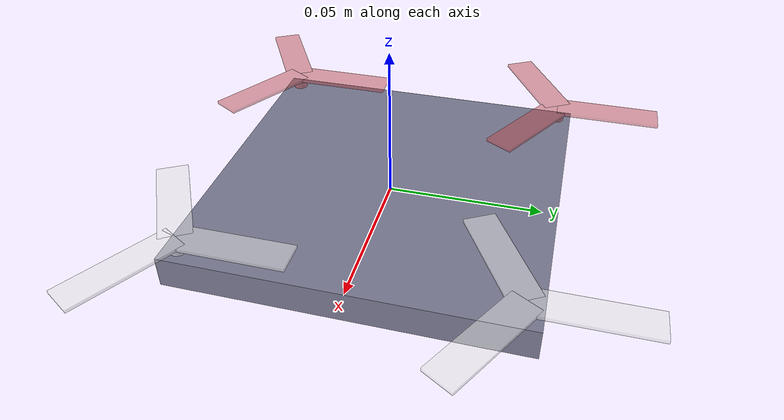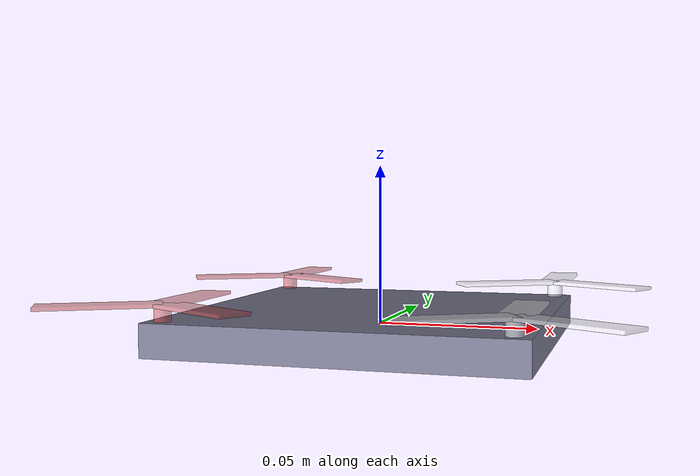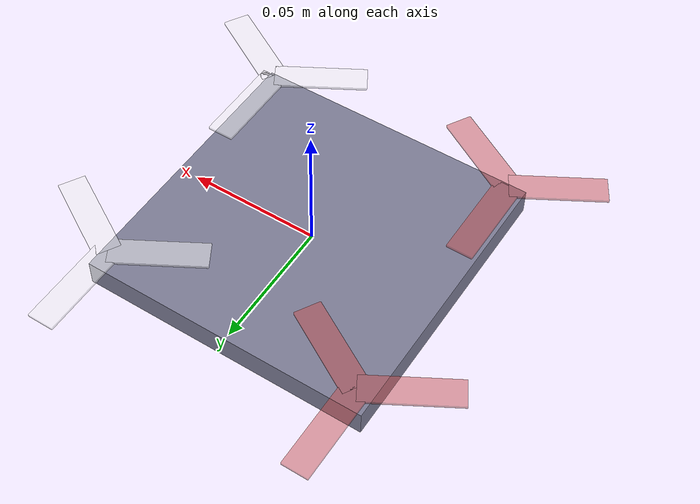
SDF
<?xml version="1.0"?>
<sdf version="1.5">
	<model name="iflight">
        <link name="body">
			<inertial>
                <pose>0 0 0 0 0 0</pose>
				<mass>0.392</mass>
				<inertia>
					<ixx>0.0003985</ixx>
                    <ixy>0.0</ixy>
                    <ixz>0.0</ixz>
					<iyy>0.0003985</iyy>
					<iyz>0.0</iyz>
                    <izz>0.0007905</izz>
				</inertia>
			</inertial>
			<collision name="collision">
				<geometry>
					<box>
						<size>0.11 0.11 0.01</size>
					</box>
				</geometry>
			</collision>
			<sensor name="imu_sensor" type="imu"> <!-- Перенести в отдельный link -->
			<pose degrees="true">0 0 0 0 0 90</pose>
				<always_on>1</always_on>
				<visualize>1</visualize>
				<update_rate>1000</update_rate>
				<topic>imu</topic>
			</sensor>
			<visual name="body_visual">
				<geometry>
					<box>
						<size>0.11 0.11 0.01</size>
					</box>
				</geometry>
				<material>
					<ambient>0.5 0.5 0.6 1</ambient>
					<diffuse>0.5 0.5 0.6 1</diffuse>
					<specular>0 0 0 1</specular>
					<emissive>0 0 0 1</emissive>
				</material>
			</visual>
		</link>

        <link name="rotor_0_base">
			<pose>-0.05 0.05 0.0075 0 0 0</pose>
			<inertial>
				<pose>0 0 0 0 0 0</pose>
				<inertia>
                    <ixx>1.393E-9</ixx>
                    <ixy>0.0</ixy>
                    <ixz>0.0</ixz>
                    <iyy>1.393E-9</iyy>
                    <iyz>0.0</iyz>
                    <izz>9.766E-10</izz>
                </inertia>
                <mass>0.0003125</mass>
			</inertial>
			<visual name="rotor_0_base_visual">
				<geometry>
					<cylinder><radius>0.0025</radius><length>0.005</length></cylinder>
				</geometry>
				<material><ambient>0.8 0.3 0.3 0.5</ambient><diffuse>0.8 0.3 0.3 0.5</diffuse></material>
			</visual>
		</link>

        <link name="rotor_0_blade_0">
			<pose>-0.05 0.05 0.01 0 0 0</pose>
			<inertial>
				<pose>0.0 0.0175 0 0.0 0.0 0.0</pose>
                <inertia>
                    <ixx>3.193E-8</ixx>
                    <ixy>0.0</ixy>
                    <ixz>0.0</ixz>
                    <iyy>2.63E-9</iyy>
                    <iyz>0.0</iyz>
                    <izz>3.4505E-8</izz>
                </inertia>
				<mass>0.0003125</mass>
			</inertial>
			<visual name="rotor_0_blade_0_visual">
				<pose>0 0.0175 0 0 0 0</pose>
				<geometry>
					<box><size>0.01 0.035 0.001</size></box>
				</geometry>
				<material><ambient>0.8 0.3 0.3 0.5</ambient><diffuse>0.8 0.3 0.3 0.5</diffuse></material>
			</visual>
		</link>

        <link name="rotor_0_blade_1">
			<pose>-0.05 0.05 0.01 0 0 2.094395</pose>
			<inertial>
				<pose>0.0 0.0175 0 0.0 0.0 0.0</pose>
                <inertia>
                    <ixx>3.193E-8</ixx>
                    <ixy>0.0</ixy>
                    <ixz>0.0</ixz>
                    <iyy>2.63E-9</iyy>
                    <iyz>0.0</iyz>
                    <izz>3.4505E-8</izz>
                </inertia>
				<mass>0.0003125</mass>
			</inertial>
			<visual name="rotor_0_blade_1_visual">
				<pose>0 0.0175 0 0 0 0</pose>
				<geometry>
					<box><size>0.01 0.035 0.001</size></box>
				</geometry>
				<material><ambient>0.8 0.3 0.3 0.5</ambient><diffuse>0.8 0.3 0.3 0.5</diffuse></material>
			</visual>
		</link>

        <link name="rotor_0_blade_2">
			<pose>-0.05 0.05 0.01 0 0 4.188790</pose>
			<inertial>
				<pose>0.0 0.0175 0 0.0 0.0 0.0</pose>
                <inertia>
                    <ixx>3.193E-8</ixx>
                    <ixy>0.0</ixy>
                    <ixz>0.0</ixz>
                    <iyy>2.63E-9</iyy>
                    <iyz>0.0</iyz>
                    <izz>3.4505E-8</izz>
                </inertia>
				<mass>0.0003125</mass>
			</inertial>
			<visual name="rotor_0_blade_2_visual">
				<pose>0 0.0175 0 0 0 0</pose>
				<geometry>
					<box><size>0.01 0.035 0.001</size></box>
				</geometry>
				<material><ambient>0.8 0.3 0.3 0.5</ambient><diffuse>0.8 0.3 0.3 0.5</diffuse></material>
			</visual>
		</link>

		<joint name="rotor_0_base_joint" type="revolute">
			<parent>body</parent>
			<child>rotor_0_base</child>
			<pose>0.0 0.0 0.0 0.0 0.0 0.0</pose>
			<axis>
			<limit>
				<lower>-1e16</lower>
				<upper>1e16</upper>
			</limit>
			<xyz>0.0 0.0 -1.0</xyz>
			<dynamics>
				<damping>0.0001</damping>
			</dynamics>
			</axis>
			<physics>
				<ode>
				<cfm_damping>1</cfm_damping>
				</ode>
			</physics>
		</joint>
        <joint name="rotor_0_blade_0_joint" type="fixed">
			<parent>rotor_0_base</parent>
			<child>rotor_0_blade_0</child>
			<pose>0 0 0 0 0 0</pose>
		</joint>
        <joint name="rotor_0_blade_1_joint" type="fixed">
			<parent>rotor_0_base</parent>
			<child>rotor_0_blade_1</child>
			<pose>0 0 0 0 0 0</pose>
		</joint>
        <joint name="rotor_0_blade_2_joint" type="fixed">
			<parent>rotor_0_base</parent>
			<child>rotor_0_blade_2</child>
			<pose>0 0 0 0 0 0</pose>
		</joint>

        <link name="rotor_1_base">
			<pose>-0.05 -0.05 0.0075 0 0 0</pose>
			<inertial>
				<pose>0 0 0 0 0 0</pose>
				<inertia>
                    <ixx>1.393E-9</ixx>
                    <ixy>0.0</ixy>
                    <ixz>0.0</ixz>
                    <iyy>1.393E-9</iyy>
                    <iyz>0.0</iyz>
                    <izz>9.766E-10</izz>
                </inertia>
                <mass>0.0003125</mass>
			</inertial>
			<visual name="rotor_1_base_visual">
				<geometry>
					<cylinder><radius>0.0025</radius><length>0.005</length></cylinder>
				</geometry>
				<material><ambient>0.8 0.3 0.3 0.5</ambient><diffuse>0.8 0.3 0.3 0.5</diffuse></material>
			</visual>
		</link>

        <link name="rotor_1_blade_0">
			<pose>-0.05 -0.05 0.01 0 0 0</pose>
			<inertial>
				<pose>0.0 0.0175 0 0.0 0.0 0.0</pose>
                <inertia>
                    <ixx>3.193E-8</ixx>
                    <ixy>0.0</ixy>
                    <ixz>0.0</ixz>
                    <iyy>2.63E-9</iyy>
                    <iyz>0.0</iyz>
                    <izz>3.4505E-8</izz>
                </inertia>
				<mass>0.0003125</mass>
			</inertial>
			<visual name="rotor_1_blade_0_visual">
				<pose>0 0.0175 0 0 0 0</pose>
				<geometry>
					<box><size>0.01 0.035 0.001</size></box>
				</geometry>
				<material><ambient>0.8 0.3 0.3 0.5</ambient><diffuse>0.8 0.3 0.3 0.5</diffuse></material>
			</visual>
		</link>

        <link name="rotor_1_blade_1">
			<pose>-0.05 -0.05 0.01 0 0 2.094395</pose>
			<inertial>
				<pose>0.0 0.0175 0 0.0 0.0 0.0</pose>
                <inertia>
                    <ixx>3.193E-8</ixx>
                    <ixy>0.0</ixy>
                    <ixz>0.0</ixz>
                    <iyy>2.63E-9</iyy>
                    <iyz>0.0</iyz>
                    <izz>3.4505E-8</izz>
                </inertia>
				<mass>0.0003125</mass>
			</inertial>
			<visual name="rotor_1_blade_1_visual">
				<pose>0 0.0175 0 0 0 0</pose>
				<geometry>
					<box><size>0.01 0.035 0.001</size></box>
				</geometry>
				<material><ambient>0.8 0.3 0.3 0.5</ambient><diffuse>0.8 0.3 0.3 0.5</diffuse></material>
			</visual>
		</link>

        <link name="rotor_1_blade_2">
			<pose>-0.05 -0.05 0.01 0 0 4.188790</pose>
			<inertial>
				<pose>0.0 0.0175 0 0.0 0.0 0.0</pose>
                <inertia>
                    <ixx>3.193E-8</ixx>
                    <ixy>0.0</ixy>
                    <ixz>0.0</ixz>
                    <iyy>2.63E-9</iyy>
                    <iyz>0.0</iyz>
                    <izz>3.4505E-8</izz>
                </inertia>
				<mass>0.0003125</mass>
			</inertial>
			<visual name="rotor_1_blade_2_visual">
				<pose>0 0.0175 0 0 0 0</pose>
				<geometry>
					<box><size>0.01 0.035 0.001</size></box>
				</geometry>
				<material><ambient>0.8 0.3 0.3 0.5</ambient><diffuse>0.8 0.3 0.3 0.5</diffuse></material>
			</visual>
		</link>

		<joint name="rotor_1_base_joint" type="revolute">
			<parent>body</parent>
			<child>rotor_1_base</child>
			<pose>0.0 0.0 0.0 0.0 0.0 0.0</pose>
			<axis>
			<limit>
				<lower>-1e16</lower>
				<upper>1e16</upper>
			</limit>
			<xyz>0.0 0.0 -1.0</xyz>
			<dynamics>
				<damping>0.0001</damping>
			</dynamics>
			</axis>
			<physics>
				<ode>
				<cfm_damping>1</cfm_damping>
				</ode>
			</physics>
		</joint>
        <joint name="rotor_1_blade_0_joint" type="fixed">
			<parent>rotor_1_base</parent>
			<child>rotor_1_blade_0</child>
			<pose>0 0 0 0 0 0</pose>
		</joint>
        <joint name="rotor_1_blade_1_joint" type="fixed">
			<parent>rotor_1_base</parent>
			<child>rotor_1_blade_1</child>
			<pose>0 0 0 0 0 0</pose>
		</joint>
        <joint name="rotor_1_blade_2_joint" type="fixed">
			<parent>rotor_1_base</parent>
			<child>rotor_1_blade_2</child>
			<pose>0 0 0 0 0 0</pose>
		</joint>

        <link name="rotor_2_base">
			<pose>0.05 -0.05 0.0075 0 0 0</pose>
			<inertial>
				<pose>0 0 0 0 0 0</pose>
				<inertia>
                    <ixx>1.393E-9</ixx>
                    <ixy>0.0</ixy>
                    <ixz>0.0</ixz>
                    <iyy>1.393E-9</iyy>
                    <iyz>0.0</iyz>
                    <izz>9.766E-10</izz>
                </inertia>
                <mass>0.0003125</mass>
			</inertial>
			<visual name="rotor_2_base_visual">
				<geometry>
					<cylinder><radius>0.0025</radius><length>0.005</length></cylinder>
				</geometry>
				<material><ambient>1 1 1 0.5</ambient><diffuse>1 1 1 0.5</diffuse></material>
			</visual>
		</link>

        <link name="rotor_2_blade_0">
			<pose>0.05 -0.05 0.01 0 0 0</pose>
			<inertial>
				<pose>0.0 0.0175 0 0.0 0.0 0.0</pose>
                <inertia>
                    <ixx>3.193E-8</ixx>
                    <ixy>0.0</ixy>
                    <ixz>0.0</ixz>
                    <iyy>2.63E-9</iyy>
                    <iyz>0.0</iyz>
                    <izz>3.4505E-8</izz>
                </inertia>
				<mass>0.0003125</mass>
			</inertial>
			<visual name="rotor_2_blade_0_visual">
				<pose>0 0.0175 0 0 0 0</pose>
				<geometry>
					<box><size>0.01 0.035 0.001</size></box>
				</geometry>
				<material><ambient>1 1 1 0.5</ambient><diffuse>1 1 1 0.5</diffuse></material>
			</visual>
		</link>

        <link name="rotor_2_blade_1">
			<pose>0.05 -0.05 0.01 0 0 2.094395</pose>
			<inertial>
				<pose>0.0 0.0175 0 0.0 0.0 0.0</pose>
                <inertia>
                    <ixx>3.193E-8</ixx>
                    <ixy>0.0</ixy>
                    <ixz>0.0</ixz>
                    <iyy>2.63E-9</iyy>
                    <iyz>0.0</iyz>
                    <izz>3.4505E-8</izz>
                </inertia>
				<mass>0.0003125</mass>
			</inertial>
			<visual name="rotor_2_blade_1_visual">
				<pose>0 0.0175 0 0 0 0</pose>
				<geometry>
					<box><size>0.01 0.035 0.001</size></box>
				</geometry>
				<material><ambient>1 1 1 0.5</ambient><diffuse>1 1 1 0.5</diffuse></material>
			</visual>
		</link>

        <link name="rotor_2_blade_2">
			<pose>0.05 -0.05 0.01 0 0 4.188790</pose>
			<inertial>
				<pose>0.0 0.0175 0 0.0 0.0 0.0</pose>
                <inertia>
                    <ixx>3.193E-8</ixx>
                    <ixy>0.0</ixy>
                    <ixz>0.0</ixz>
                    <iyy>2.63E-9</iyy>
                    <iyz>0.0</iyz>
                    <izz>3.4505E-8</izz>
                </inertia>
				<mass>0.0003125</mass>
			</inertial>
			<visual name="rotor_2_blade_2_visual">
				<pose>0 0.0175 0 0 0 0</pose>
				<geometry>
					<box><size>0.01 0.035 0.001</size></box>
				</geometry>
				<material><ambient>1 1 1 0.5</ambient><diffuse>1 1 1 0.5</diffuse></material>
			</visual>
		</link>

		<joint name="rotor_2_base_joint" type="revolute">
			<parent>body</parent>
			<child>rotor_2_base</child>
			<pose>0.0 0.0 0.0 0.0 0.0 0.0</pose>
			<axis>
			<limit>
				<lower>-1e16</lower>
				<upper>1e16</upper>
			</limit>
			<xyz>0.0 0.0 -1.0</xyz>
			<dynamics>
				<damping>0.0001</damping>
			</dynamics>
			</axis>
			<physics>
				<ode>
				<cfm_damping>1</cfm_damping>
				</ode>
			</physics>
		</joint>
        <joint name="rotor_2_blade_0_joint" type="fixed">
			<parent>rotor_2_base</parent>
			<child>rotor_2_blade_0</child>
			<pose>0 0 0 0 0 0</pose>
		</joint>
        <joint name="rotor_2_blade_1_joint" type="fixed">
			<parent>rotor_2_base</parent>
			<child>rotor_2_blade_1</child>
			<pose>0 0 0 0 0 0</pose>
		</joint>
        <joint name="rotor_2_blade_2_joint" type="fixed">
			<parent>rotor_2_base</parent>
			<child>rotor_2_blade_2</child>
			<pose>0 0 0 0 0 0</pose>
		</joint>

        <link name="rotor_3_base">
			<pose>0.05 0.05 0.0075 0 0 0</pose>
			<inertial>
				<pose>0 0 0 0 0 0</pose>
				<inertia>
                    <ixx>1.393E-9</ixx>
                    <ixy>0.0</ixy>
                    <ixz>0.0</ixz>
                    <iyy>1.393E-9</iyy>
                    <iyz>0.0</iyz>
                    <izz>9.766E-10</izz>
                </inertia>
                <mass>0.0003125</mass>
			</inertial>
			<visual name="rotor_3_base_visual">
				<geometry>
					<cylinder><radius>0.0025</radius><length>0.005</length></cylinder>
				</geometry>
				<material><ambient>1 1 1 0.5</ambient><diffuse>1 1 1 0.5</diffuse></material>
			</visual>
		</link>

        <link name="rotor_3_blade_0">
			<pose>0.05 0.05 0.01 0 0 0</pose>
			<inertial>
				<pose>0.0 0.0175 0 0.0 0.0 0.0</pose>
                <inertia>
                    <ixx>3.193E-8</ixx>
                    <ixy>0.0</ixy>
                    <ixz>0.0</ixz>
                    <iyy>2.63E-9</iyy>
                    <iyz>0.0</iyz>
                    <izz>3.4505E-8</izz>
                </inertia>
				<mass>0.0003125</mass>
			</inertial>
			<visual name="rotor_3_blade_0_visual">
				<pose>0 0.0175 0 0 0 0</pose>
				<geometry>
					<box><size>0.01 0.035 0.001</size></box>
				</geometry>
				<material><ambient>1 1 1 0.5</ambient><diffuse>1 1 1 0.5</diffuse></material>
			</visual>
		</link>

        <link name="rotor_3_blade_1">
			<pose>0.05 0.05 0.01 0 0 2.094395</pose>
			<inertial>
				<pose>0.0 0.0175 0 0.0 0.0 0.0</pose>
                <inertia>
                    <ixx>3.193E-8</ixx>
                    <ixy>0.0</ixy>
                    <ixz>0.0</ixz>
                    <iyy>2.63E-9</iyy>
                    <iyz>0.0</iyz>
                    <izz>3.4505E-8</izz>
                </inertia>
				<mass>0.0003125</mass>
			</inertial>
			<visual name="rotor_3_blade_1_visual">
				<pose>0 0.0175 0 0 0 0</pose>
				<geometry>
					<box><size>0.01 0.035 0.001</size></box>
				</geometry>
				<material><ambient>1 1 1 0.5</ambient><diffuse>1 1 1 0.5</diffuse></material>
			</visual>
		</link>

        <link name="rotor_3_blade_2">
			<pose>0.05 0.05 0.01 0 0 4.188790</pose>
			<inertial>
				<pose>0.0 0.0175 0 0.0 0.0 0.0</pose>
                <inertia>
                    <ixx>3.193E-8</ixx>
                    <ixy>0.0</ixy>
                    <ixz>0.0</ixz>
                    <iyy>2.63E-9</iyy>
                    <iyz>0.0</iyz>
                    <izz>3.4505E-8</izz>
                </inertia>
				<mass>0.0003125</mass>
			</inertial>
			<visual name="rotor_3_blade_2_visual">
				<pose>0 0.0175 0 0 0 0</pose>
				<geometry>
					<box><size>0.01 0.035 0.001</size></box>
				</geometry>
				<material><ambient>1 1 1 0.5</ambient><diffuse>1 1 1 0.5</diffuse></material>
			</visual>
		</link>

		<joint name="rotor_3_base_joint" type="revolute">
			<parent>body</parent>
			<child>rotor_3_base</child>
			<pose>0.0 0.0 0.0 0.0 0.0 0.0</pose>
			<axis>
			<limit>
				<lower>-1e16</lower>
				<upper>1e16</upper>
			</limit>
			<xyz>0.0 0.0 -1.0</xyz>
			<dynamics>
				<damping>0.0001</damping>
			</dynamics>
			</axis>
			<physics>
				<ode>
				<cfm_damping>1</cfm_damping>
				</ode>
			</physics>
		</joint>
        <joint name="rotor_3_blade_0_joint" type="fixed">
			<parent>rotor_3_base</parent>
			<child>rotor_3_blade_0</child>
			<pose>0 0 0 0 0 0</pose>
		</joint>
        <joint name="rotor_3_blade_1_joint" type="fixed">
			<parent>rotor_3_base</parent>
			<child>rotor_3_blade_1</child>
			<pose>0 0 0 0 0 0</pose>
		</joint>
        <joint name="rotor_3_blade_2_joint" type="fixed">
			<parent>rotor_3_base</parent>
			<child>rotor_3_blade_2</child>
			<pose>0 0 0 0 0 0</pose>
		</joint>

		<plugin filename="gz-sim-joint-state-publisher-system"
        name="gz::sim::systems::JointStatePublisher">
		</plugin>

		<plugin
        filename="gz-sim-apply-joint-force-system"
        name="gz::sim::systems::ApplyJointForce">
        	<joint_name>rotor_0_base_joint</joint_name>
      	</plugin>

        <plugin
			filename="gz-sim-lift-drag-system"
			name="gz::sim::systems::LiftDrag">
			<a0>0.1</a0>
			<cla>0.1</cla>
			<cda>0.001</cda>
			<cma>0.0</cma>
			<cp>0.0 0.0175 0</cp>
			<area>0.00035</area>
			<air_density>1.2041</air_density>
			<forward>1 0 0</forward> <!-- CCW -1 0 0 -->
			<upward>0 0 1</upward>
			<link_name>rotor_0_blade_0</link_name>
		</plugin>

        <plugin
			filename="gz-sim-lift-drag-system"
			name="gz::sim::systems::LiftDrag">
			<a0>0.1</a0>
			<cla>0.1</cla>
			<cda>0.001</cda>
			<cma>0.0</cma>
			<cp>0.0 0.0175 0</cp>
			<area>0.00035</area>
			<air_density>1.2041</air_density>
			<forward>1 0 0</forward> <!-- CCW -1 0 0 -->
			<upward>0 0 1</upward>
			<link_name>rotor_0_blade_1</link_name>
		</plugin>

        <plugin
			filename="gz-sim-lift-drag-system"
			name="gz::sim::systems::LiftDrag">
			<a0>0.1</a0>
			<cla>0.1</cla>
			<cda>0.001</cda>
			<cma>0.0</cma>
			<cp>0.0 0.0175 0</cp>
			<area>0.00035</area>
			<air_density>1.2041</air_density>
			<forward>1 0 0</forward> <!-- CCW -1 0 0 -->
			<upward>0 0 1</upward>
			<link_name>rotor_0_blade_2</link_name>
		</plugin>

		<plugin
        filename="gz-sim-apply-joint-force-system"
        name="gz::sim::systems::ApplyJointForce">
        	<joint_name>rotor_1_base_joint</joint_name>
      	</plugin>

        <plugin
			filename="gz-sim-lift-drag-system"
			name="gz::sim::systems::LiftDrag">
			<a0>0.1</a0>
			<cla>0.1</cla>
			<cda>0.001</cda>
			<cma>0.0</cma>
			<cp>0.0 0.0175 0</cp>
			<area>0.00035</area>
			<air_density>1.2041</air_density>
			<forward>-1 0 0</forward> <!-- CCW -1 0 0 -->
			<upward>0 0 1</upward>
			<link_name>rotor_1_blade_0</link_name>
		</plugin>

        <plugin
			filename="gz-sim-lift-drag-system"
			name="gz::sim::systems::LiftDrag">
			<a0>0.1</a0>
			<cla>0.1</cla>
			<cda>0.001</cda>
			<cma>0.0</cma>
			<cp>0.0 0.0175 0</cp>
			<area>0.00035</area>
			<air_density>1.2041</air_density>
			<forward>-1 0 0</forward> <!-- CCW -1 0 0 -->
			<upward>0 0 1</upward>
			<link_name>rotor_1_blade_1</link_name>
		</plugin>

        <plugin
			filename="gz-sim-lift-drag-system"
			name="gz::sim::systems::LiftDrag">
			<a0>0.1</a0>
			<cla>0.1</cla>
			<cda>0.001</cda>
			<cma>0.0</cma>
			<cp>0.0 0.0175 0</cp>
			<area>0.00035</area>
			<air_density>1.2041</air_density>
			<forward>-1 0 0</forward> <!-- CCW -1 0 0 -->
			<upward>0 0 1</upward>
			<link_name>rotor_1_blade_2</link_name>
		</plugin>

		<plugin
        filename="gz-sim-apply-joint-force-system"
        name="gz::sim::systems::ApplyJointForce">
        	<joint_name>rotor_2_base_joint</joint_name>
      	</plugin>

        <plugin
			filename="gz-sim-lift-drag-system"
			name="gz::sim::systems::LiftDrag">
			<a0>0.1</a0>
			<cla>0.1</cla>
			<cda>0.001</cda>
			<cma>0.0</cma>
			<cp>0.0 0.0175 0</cp>
			<area>0.00035</area>
			<air_density>1.2041</air_density>
			<forward>1 0 0</forward> <!-- CCW -1 0 0 -->
			<upward>0 0 1</upward>
			<link_name>rotor_2_blade_0</link_name>
		</plugin>

        <plugin
			filename="gz-sim-lift-drag-system"
			name="gz::sim::systems::LiftDrag">
			<a0>0.1</a0>
			<cla>0.1</cla>
			<cda>0.001</cda>
			<cma>0.0</cma>
			<cp>0.0 0.0175 0</cp>
			<area>0.00035</area>
			<air_density>1.2041</air_density>
			<forward>1 0 0</forward> <!-- CCW -1 0 0 -->
			<upward>0 0 1</upward>
			<link_name>rotor_2_blade_1</link_name>
		</plugin>

        <plugin
			filename="gz-sim-lift-drag-system"
			name="gz::sim::systems::LiftDrag">
			<a0>0.1</a0>
			<cla>0.1</cla>
			<cda>0.001</cda>
			<cma>0.0</cma>
			<cp>0.0 0.0175 0</cp>
			<area>0.00035</area>
			<air_density>1.2041</air_density>
			<forward>1 0 0</forward> <!-- CCW -1 0 0 -->
			<upward>0 0 1</upward>
			<link_name>rotor_2_blade_2</link_name>
		</plugin>

        <plugin
        filename="gz-sim-apply-joint-force-system"
        name="gz::sim::systems::ApplyJointForce">
        	<joint_name>rotor_3_base_joint</joint_name>
      	</plugin>

        <plugin
			filename="gz-sim-lift-drag-system"
			name="gz::sim::systems::LiftDrag">
			<a0>0.1</a0>
			<cla>0.1</cla>
			<cda>0.001</cda>
			<cma>0.0</cma>
			<cp>0.0 0.0175 0</cp>
			<area>0.00035</area>
			<air_density>1.2041</air_density>
			<forward>-1 0 0</forward> <!-- CCW -1 0 0 -->
			<upward>0 0 1</upward>
			<link_name>rotor_3_blade_0</link_name>
		</plugin>

        <plugin
			filename="gz-sim-lift-drag-system"
			name="gz::sim::systems::LiftDrag">
			<a0>0.1</a0>
			<cla>0.1</cla>
			<cda>0.001</cda>
			<cma>0.0</cma>
			<cp>0.0 0.0175 0</cp>
			<area>0.00035</area>
			<air_density>1.2041</air_density>
			<forward>-1 0 0</forward> <!-- CCW -1 0 0 -->
			<upward>0 0 1</upward>
			<link_name>rotor_3_blade_1</link_name>
		</plugin>

        <plugin
			filename="gz-sim-lift-drag-system"
			name="gz::sim::systems::LiftDrag">
			<a0>0.1</a0>
			<cla>0.1</cla>
			<cda>0.001</cda>
			<cma>0.0</cma>
			<cp>0.0 0.0175 0</cp>
			<area>0.00035</area>
			<air_density>1.2041</air_density>
			<forward>-1 0 0</forward> <!-- CCW -1 0 0 -->
			<upward>0 0 1</upward>
			<link_name>rotor_3_blade_2</link_name>
		</plugin>

        <plugin filename="Iflight" name="Iflight">
            <rotor index="2">
                <joint_name>rotor_2_base_joint</joint_name>
                <direction_k>1</direction_k>
            </rotor>
            <rotor index="3">
                <joint_name>rotor_3_base_joint</joint_name>
                <direction_k>-1</direction_k>
            </rotor>
            <rotor index="0">
                <joint_name>rotor_0_base_joint</joint_name>
                <direction_k>1</direction_k>
            </rotor>
            <rotor index="1">
                <joint_name>rotor_1_base_joint</joint_name>
                <direction_k>-1</direction_k>
            </rotor>
		</plugin>

		<plugin filename="gz-sim-imu-system"
	        name="gz::sim::systems::Imu">
		</plugin>
	</model>
</sdf>
